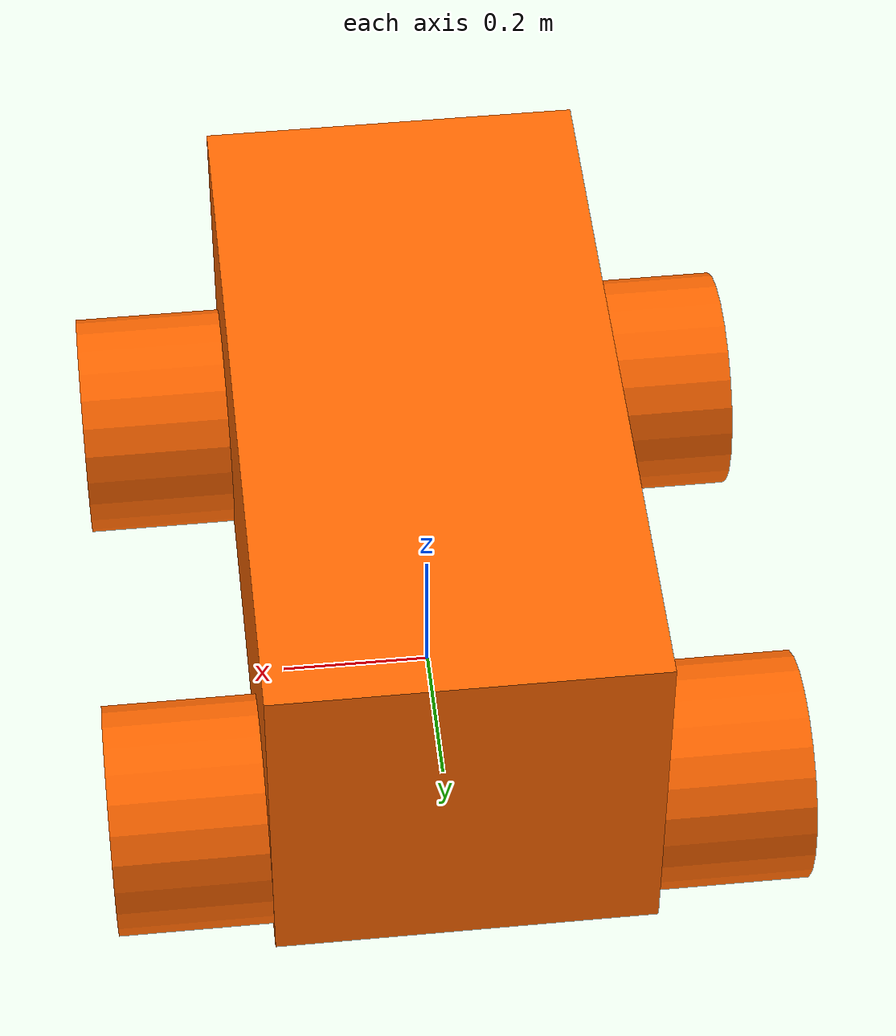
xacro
<robot name="mbot">
    <link name="base_link">
        <visual>
            <origin xyz="0 0 0.3 " rpy="0 0 0 "/>
            <geometry>
                <box size="0.5 1 0.5"/>
            </geometry>
            <material name="blue">
                <color rgba="1 0.4 0 1"/>
            </material>
        </visual>
        <collision>
            <origin xyz="0 0 0.3" rpy="0 0 0"/>
            <geometry>
                <box size="0.5 1 0.5"/>
            </geometry>
        </collision>
        <inertial>
            <origin xyz="0 0 0"/>
            <mass value="100"/>
            <inertia ixx="1.0" ixy="0.0" ixz="0.0" iyy="1.0" iyz="0.0" izz="1.0"/>
        </inertial>

    </link>

    <joint name="left_back_wheel_joint" type="continuous">
        <origin xyz="0.35 0.35 0.15 " rpy="0 0 0 "/>
        <parent link="base_link"/>
        <child link="left_back_link"/>
        <axis xyz="1 0 0"/>
    </joint>
    <link name="left_back_link">
        <visual>
            <origin xyz=" 0 0 0 " rpy="1.570795 0 1.570795"/>
            <geometry>
                <cylinder length="0.2" radius="0.15"/>
            </geometry>
            <material name="yellow">
                <color rgba="1 0.4 0 1"/>
            </material>
        </visual>
        <collision>
            <origin xyz="0 0 0" rpy="1.570795 0 1.570795"/>
            <geometry>
                <cylinder length="0.2" radius="0.15"/>
            </geometry>
        </collision>
        <inertial>
            <origin xyz="0 0 0 "/>
            <mass value="100"/>
            <inertia ixx="1.0" ixy="0.0" ixz="0.0" iyy="1.0" iyz="0.0" izz="1.0"/>
        </inertial>
    </link>

    <joint name="left_front_wheel_joint" type="continuous">
        <origin xyz="0.35 -0.35 0.15" rpy="0 0 0 "/>
        <parent link="base_link"/>
        <child link="left_front_link"/>
        <axis xyz="1 0 0"/>
    </joint>
    <link name="left_front_link" type="continuous">
        <visual>
            <origin xyz="0 0 0 " rpy="1.570795 0 1.570795"/>
            <geometry>
                <cylinder length="0.2" radius="0.15"/>
            </geometry>
            <material name="yellow">
                <color rgba="1 0.4 0 1"/>
            </material>
        </visual>
        <collision>
            <origin xyz="0 0 0" rpy="1.570795 0 1.570795"/>
            <geometry>
                <cylinder length="0.2" radius="0.15"/>
            </geometry>
        </collision>
        <inertial>
            <origin xyz="0 0 0 "/>
            <mass value="100"/>
            <inertia ixx="1.0" ixy="0.0" ixz="0.0" iyy="1.0" iyz="0.0" izz="1.0"/>
        </inertial>
    </link>

    <joint name="right_back_wheel_joint" type="continuous">
        <origin xyz="-0.35 0.35 0.15 " rpy="0 0 0 "/>
        <parent link="base_link"/>
        <child link="right_back_link"/>
        <axis xyz="1 0 0"/>
    </joint>
    <link name="right_back_link">
        <visual>
            <origin xyz=" 0 0 0" rpy="1.570795 0 1.570795"/>
            <geometry>
                <cylinder length="0.2" radius="0.15"/>
            </geometry>
            <material name="yellow">
                <color rgba="1 0.4 0 1"/>
            </material>
        </visual>
        <collision>
            <origin xyz="0 0 0" rpy="1.570795 0 1.570795"/>
            <geometry>
                <cylinder length="0.2" radius="0.15"/>
            </geometry>
        </collision>
        <inertial>
            <origin xyz="0 0 0 "/>
            <mass value="100"/>
            <inertia ixx="1.0" ixy="0.0" ixz="0.0" iyy="1.0" iyz="0.0" izz="1.0"/>
        </inertial>
    </link>

    <joint name="right_front_wheel_joint" type="continuous">
        <origin xyz="-0.35 -0.35 0.15" rpy="0 0 0 "/>
        <parent link="base_link"/>
        <child link="right_front_link"/>
        <axis xyz="1 0 0"/>
    </joint>
    <link name="right_front_link" type="continuous">
        <visual>
            <origin xyz="0 0 0" rpy="1.570795 0 1.570795"/>
            <geometry>
                <cylinder length="0.2" radius="0.15"/>
            </geometry>
            <material name="yellow">
                <color rgba="1 0.4 0 1"/>
            </material>
        </visual>
        <collision>
            <origin xyz="0 0 0 " rpy="1.570795 0 1.570795"/>
            <geometry>
                <cylinder length="0.2" radius="0.15"/>
            </geometry>
        </collision>
        <inertial>
            <origin xyz="0 0 0 "/>
            <mass value="100"/>
            <inertia ixx="1.0" ixy="0.0" ixz="0.0" iyy="1.0" iyz="0.0" izz="1.0"/>
        </inertial>
    </link>

    <transmission name="left_back_trans">
        <type>transmission_interface/SimpleTransmission</type>
        <actuator name="left_back_motor">
            <mechanicalReducation>1</mechanicalReducation>
        </actuator>
        <joint name="left_back_wheel_joint">
            <hardwareInterface>hardware_interface/EffortJointInterface</hardwareInterface>
        </joint>
    </transmission>

    <transmission name="left_front_trans">
        <type>transmission_interface/SimpleTransmission</type>
        <actuator name="left_front_motor">
            <mechanicalReducation>1</mechanicalReducation>
        </actuator>
        <joint name="left_front_wheel_joint">
            <hardwareInterface>hardware_interface/EffortJointInterface</hardwareInterface>
        </joint>
    </transmission>

    <transmission name="right_back_motor">
        <type>transmission_interface/SimpleTransmission</type>
        <actuator name="right_back_motor">
            <mechanicalReducation>1</mechanicalReducation>
        </actuator>
        <joint name="right_back_wheel_joint">
            <hardwareInterface>hardware_interface/EffortJointInterface</hardwareInterface>
        </joint>
    </transmission>

    <transmission name="right_front_joint">
        <type>transmission_interface/SimpleTransmission</type>
        <actuator name="right_front_joint">
            <mechanicalReducation>1</mechanicalReducation>
        </actuator>
        <joint name="right_front_wheel_joint">
            <hardwareInterface>hardware_interface/EffortJointInterface</hardwareInterface>
        </joint>
    </transmission>

    <gazebo>
        <plugin name="gazebo_ros_control" filename="libgazebo_ros_control.so">
            <robotNamespace>/</robotNamespace>
        </plugin>
    </gazebo>
</robot>
